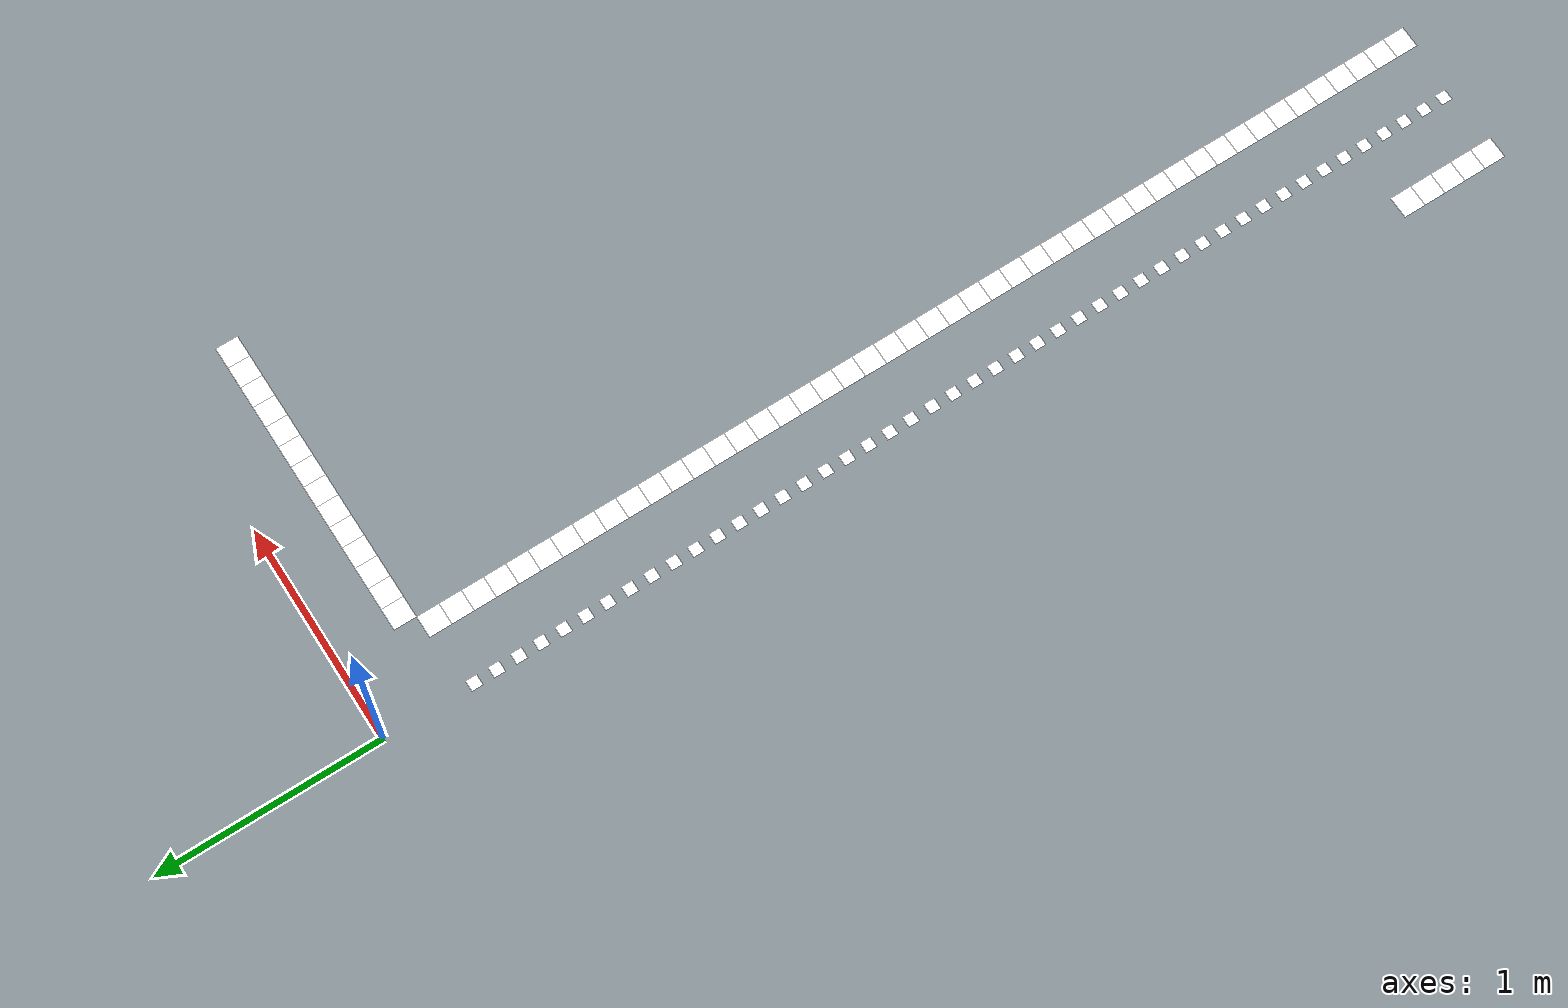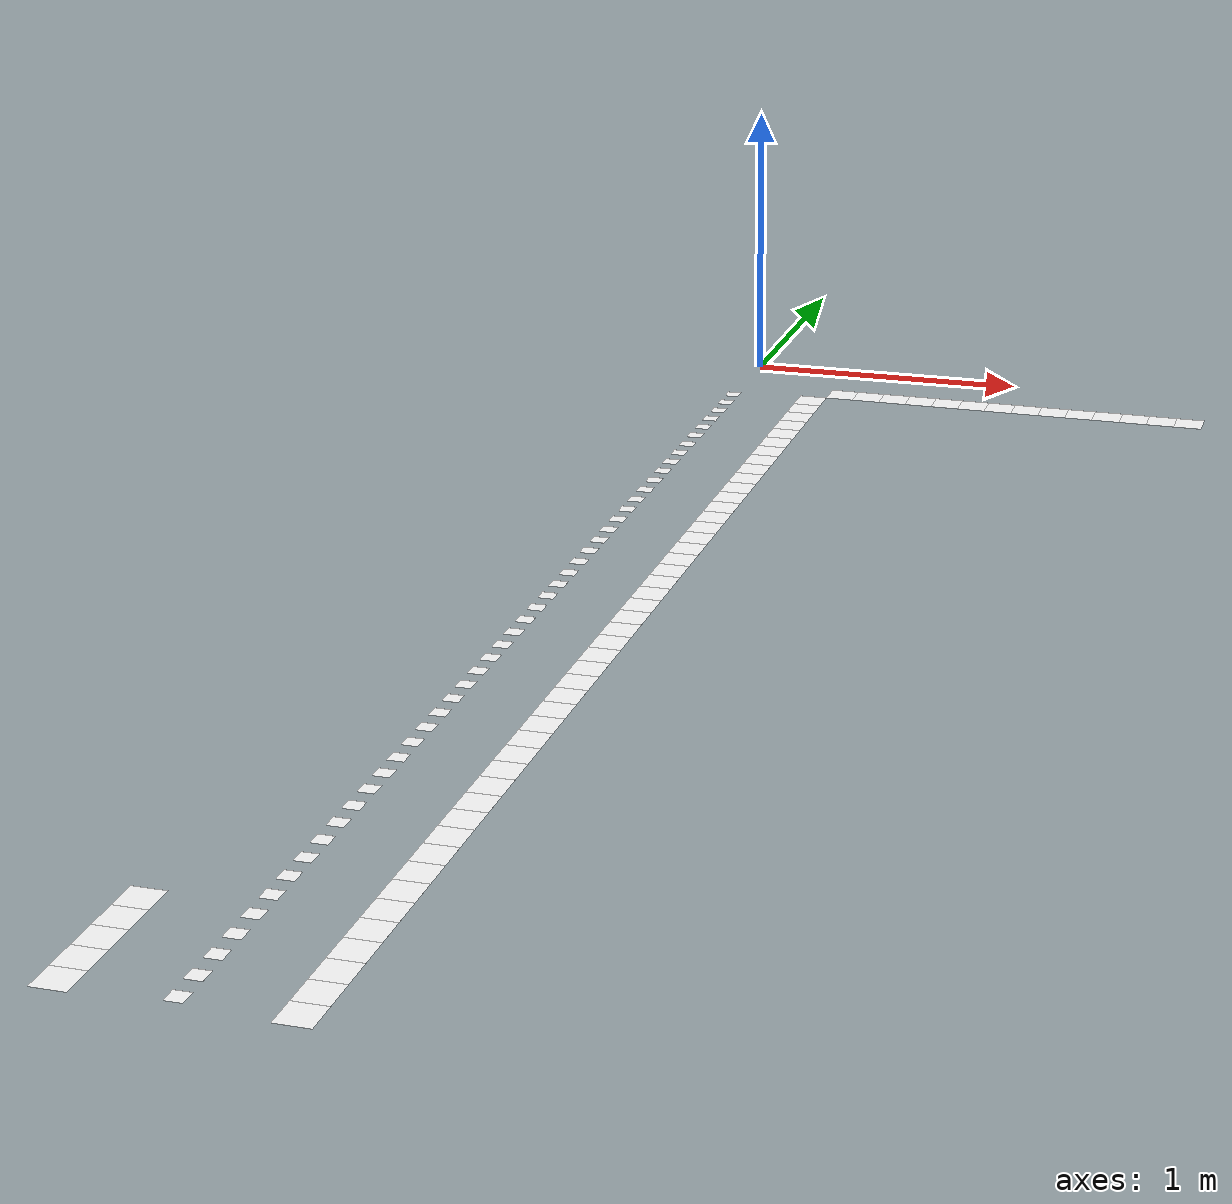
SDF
<sdf version="1.5">
 <model name="AutoNOMOS_mini_intersection">
  <static>true</static>
  <link name="L10_p4">
   <pose>0 -0.4 .011 0 0 0</pose>
   <visual name="visual_L10_p4">
    <cast_shadows>false</cast_shadows>
    <geometry><plane><normal>0 0 1</normal><size>.05 .05</size></plane></geometry>
    <material>
     <ambient>0 0 0 0</ambient>
     <diffuse>1 1 1 0</diffuse>
     <specular>0 0 0 0</specular>
     <emissive>0 0 0 0</emissive>
    </material>
   </visual>
  </link>
  <link name="L11_p4">
   <pose>0.3 -0.4 .011 0 0 0</pose>
   <visual name="visual_L11_p4">
    <cast_shadows>false</cast_shadows>
    <geometry><plane><normal>0 0 1</normal><size>.1 .1</size></plane></geometry>
    <material>
     <ambient>0 0 0 0</ambient>
     <diffuse>1 1 1 0</diffuse>
     <specular>0 0 0 0</specular>
     <emissive>0 0 0 0</emissive>
    </material>
   </visual>
  </link>
  <link name="L12_p4">
   <pose>0.4 -0.3 .011 0 0 0</pose>
   <visual name="visual_L12_p4">
    <cast_shadows>false</cast_shadows>
    <geometry><plane><normal>0 0 1</normal><size>.1 .1</size></plane></geometry>
    <material>
     <ambient>0 0 0 0</ambient>
     <diffuse>1 1 1 0</diffuse>
     <specular>0 0 0 0</specular>
     <emissive>0 0 0 0</emissive>
    </material>
   </visual>
  </link>
  <link name="L10_p5">
   <pose>0 -0.5 .011 0 0 0</pose>
   <visual name="visual_L10_p5">
    <cast_shadows>false</cast_shadows>
    <geometry><plane><normal>0 0 1</normal><size>.05 .05</size></plane></geometry>
    <material>
     <ambient>0 0 0 0</ambient>
     <diffuse>1 1 1 0</diffuse>
     <specular>0 0 0 0</specular>
     <emissive>0 0 0 0</emissive>
    </material>
   </visual>
  </link>
  <link name="L11_p5">
   <pose>0.3 -0.5 .011 0 0 0</pose>
   <visual name="visual_L11_p5">
    <cast_shadows>false</cast_shadows>
    <geometry><plane><normal>0 0 1</normal><size>.1 .1</size></plane></geometry>
    <material>
     <ambient>0 0 0 0</ambient>
     <diffuse>1 1 1 0</diffuse>
     <specular>0 0 0 0</specular>
     <emissive>0 0 0 0</emissive>
    </material>
   </visual>
  </link>
  <link name="L12_p5">
   <pose>0.5 -0.3 .011 0 0 0</pose>
   <visual name="visual_L12_p5">
    <cast_shadows>false</cast_shadows>
    <geometry><plane><normal>0 0 1</normal><size>.1 .1</size></plane></geometry>
    <material>
     <ambient>0 0 0 0</ambient>
     <diffuse>1 1 1 0</diffuse>
     <specular>0 0 0 0</specular>
     <emissive>0 0 0 0</emissive>
    </material>
   </visual>
  </link>
  <link name="L10_p6">
   <pose>0 -0.6 .011 0 0 0</pose>
   <visual name="visual_L10_p6">
    <cast_shadows>false</cast_shadows>
    <geometry><plane><normal>0 0 1</normal><size>.05 .05</size></plane></geometry>
    <material>
     <ambient>0 0 0 0</ambient>
     <diffuse>1 1 1 0</diffuse>
     <specular>0 0 0 0</specular>
     <emissive>0 0 0 0</emissive>
    </material>
   </visual>
  </link>
  <link name="L11_p6">
   <pose>0.3 -0.6 .011 0 0 0</pose>
   <visual name="visual_L11_p6">
    <cast_shadows>false</cast_shadows>
    <geometry><plane><normal>0 0 1</normal><size>.1 .1</size></plane></geometry>
    <material>
     <ambient>0 0 0 0</ambient>
     <diffuse>1 1 1 0</diffuse>
     <specular>0 0 0 0</specular>
     <emissive>0 0 0 0</emissive>
    </material>
   </visual>
  </link>
  <link name="L12_p6">
   <pose>0.6 -0.3 .011 0 0 0</pose>
   <visual name="visual_L12_p6">
    <cast_shadows>false</cast_shadows>
    <geometry><plane><normal>0 0 1</normal><size>.1 .1</size></plane></geometry>
    <material>
     <ambient>0 0 0 0</ambient>
     <diffuse>1 1 1 0</diffuse>
     <specular>0 0 0 0</specular>
     <emissive>0 0 0 0</emissive>
    </material>
   </visual>
  </link>
  <link name="L10_p7">
   <pose>0 -0.7 .011 0 0 0</pose>
   <visual name="visual_L10_p7">
    <cast_shadows>false</cast_shadows>
    <geometry><plane><normal>0 0 1</normal><size>.05 .05</size></plane></geometry>
    <material>
     <ambient>0 0 0 0</ambient>
     <diffuse>1 1 1 0</diffuse>
     <specular>0 0 0 0</specular>
     <emissive>0 0 0 0</emissive>
    </material>
   </visual>
  </link>
  <link name="L11_p7">
   <pose>0.3 -0.7 .011 0 0 0</pose>
   <visual name="visual_L11_p7">
    <cast_shadows>false</cast_shadows>
    <geometry><plane><normal>0 0 1</normal><size>.1 .1</size></plane></geometry>
    <material>
     <ambient>0 0 0 0</ambient>
     <diffuse>1 1 1 0</diffuse>
     <specular>0 0 0 0</specular>
     <emissive>0 0 0 0</emissive>
    </material>
   </visual>
  </link>
  <link name="L12_p7">
   <pose>0.7 -0.3 .011 0 0 0</pose>
   <visual name="visual_L12_p7">
    <cast_shadows>false</cast_shadows>
    <geometry><plane><normal>0 0 1</normal><size>.1 .1</size></plane></geometry>
    <material>
     <ambient>0 0 0 0</ambient>
     <diffuse>1 1 1 0</diffuse>
     <specular>0 0 0 0</specular>
     <emissive>0 0 0 0</emissive>
    </material>
   </visual>
  </link>
  <link name="L10_p8">
   <pose>0 -0.8 .011 0 0 0</pose>
   <visual name="visual_L10_p8">
    <cast_shadows>false</cast_shadows>
    <geometry><plane><normal>0 0 1</normal><size>.05 .05</size></plane></geometry>
    <material>
     <ambient>0 0 0 0</ambient>
     <diffuse>1 1 1 0</diffuse>
     <specular>0 0 0 0</specular>
     <emissive>0 0 0 0</emissive>
    </material>
   </visual>
  </link>
  <link name="L11_p8">
   <pose>0.3 -0.8 .011 0 0 0</pose>
   <visual name="visual_L11_p8">
    <cast_shadows>false</cast_shadows>
    <geometry><plane><normal>0 0 1</normal><size>.1 .1</size></plane></geometry>
    <material>
     <ambient>0 0 0 0</ambient>
     <diffuse>1 1 1 0</diffuse>
     <specular>0 0 0 0</specular>
     <emissive>0 0 0 0</emissive>
    </material>
   </visual>
  </link>
  <link name="L12_p8">
   <pose>0.8 -0.3 .011 0 0 0</pose>
   <visual name="visual_L12_p8">
    <cast_shadows>false</cast_shadows>
    <geometry><plane><normal>0 0 1</normal><size>.1 .1</size></plane></geometry>
    <material>
     <ambient>0 0 0 0</ambient>
     <diffuse>1 1 1 0</diffuse>
     <specular>0 0 0 0</specular>
     <emissive>0 0 0 0</emissive>
    </material>
   </visual>
  </link>
  <link name="L10_p9">
   <pose>0 -0.9 .011 0 0 0</pose>
   <visual name="visual_L10_p9">
    <cast_shadows>false</cast_shadows>
    <geometry><plane><normal>0 0 1</normal><size>.05 .05</size></plane></geometry>
    <material>
     <ambient>0 0 0 0</ambient>
     <diffuse>1 1 1 0</diffuse>
     <specular>0 0 0 0</specular>
     <emissive>0 0 0 0</emissive>
    </material>
   </visual>
  </link>
  <link name="L11_p9">
   <pose>0.3 -0.9 .011 0 0 0</pose>
   <visual name="visual_L11_p9">
    <cast_shadows>false</cast_shadows>
    <geometry><plane><normal>0 0 1</normal><size>.1 .1</size></plane></geometry>
    <material>
     <ambient>0 0 0 0</ambient>
     <diffuse>1 1 1 0</diffuse>
     <specular>0 0 0 0</specular>
     <emissive>0 0 0 0</emissive>
    </material>
   </visual>
  </link>
  <link name="L12_p9">
   <pose>0.9 -0.3 .011 0 0 0</pose>
   <visual name="visual_L12_p9">
    <cast_shadows>false</cast_shadows>
    <geometry><plane><normal>0 0 1</normal><size>.1 .1</size></plane></geometry>
    <material>
     <ambient>0 0 0 0</ambient>
     <diffuse>1 1 1 0</diffuse>
     <specular>0 0 0 0</specular>
     <emissive>0 0 0 0</emissive>
    </material>
   </visual>
  </link>
  <link name="L10_p10">
   <pose>0 -1 .011 0 0 0</pose>
   <visual name="visual_L10_p10">
    <cast_shadows>false</cast_shadows>
    <geometry><plane><normal>0 0 1</normal><size>.05 .05</size></plane></geometry>
    <material>
     <ambient>0 0 0 0</ambient>
     <diffuse>1 1 1 0</diffuse>
     <specular>0 0 0 0</specular>
     <emissive>0 0 0 0</emissive>
    </material>
   </visual>
  </link>
  <link name="L11_p10">
   <pose>0.3 -1 .011 0 0 0</pose>
   <visual name="visual_L11_p10">
    <cast_shadows>false</cast_shadows>
    <geometry><plane><normal>0 0 1</normal><size>.1 .1</size></plane></geometry>
    <material>
     <ambient>0 0 0 0</ambient>
     <diffuse>1 1 1 0</diffuse>
     <specular>0 0 0 0</specular>
     <emissive>0 0 0 0</emissive>
    </material>
   </visual>
  </link>
  <link name="L12_p10">
   <pose>1 -0.3 .011 0 0 0</pose>
   <visual name="visual_L12_p10">
    <cast_shadows>false</cast_shadows>
    <geometry><plane><normal>0 0 1</normal><size>.1 .1</size></plane></geometry>
    <material>
     <ambient>0 0 0 0</ambient>
     <diffuse>1 1 1 0</diffuse>
     <specular>0 0 0 0</specular>
     <emissive>0 0 0 0</emissive>
    </material>
   </visual>
  </link>
  <link name="L10_p11">
   <pose>0 -1.1 .011 0 0 0</pose>
   <visual name="visual_L10_p11">
    <cast_shadows>false</cast_shadows>
    <geometry><plane><normal>0 0 1</normal><size>.05 .05</size></plane></geometry>
    <material>
     <ambient>0 0 0 0</ambient>
     <diffuse>1 1 1 0</diffuse>
     <specular>0 0 0 0</specular>
     <emissive>0 0 0 0</emissive>
    </material>
   </visual>
  </link>
  <link name="L11_p11">
   <pose>0.3 -1.1 .011 0 0 0</pose>
   <visual name="visual_L11_p11">
    <cast_shadows>false</cast_shadows>
    <geometry><plane><normal>0 0 1</normal><size>.1 .1</size></plane></geometry>
    <material>
     <ambient>0 0 0 0</ambient>
     <diffuse>1 1 1 0</diffuse>
     <specular>0 0 0 0</specular>
     <emissive>0 0 0 0</emissive>
    </material>
   </visual>
  </link>
  <link name="L12_p11">
   <pose>1.1 -0.3 .011 0 0 0</pose>
   <visual name="visual_L12_p11">
    <cast_shadows>false</cast_shadows>
    <geometry><plane><normal>0 0 1</normal><size>.1 .1</size></plane></geometry>
    <material>
     <ambient>0 0 0 0</ambient>
     <diffuse>1 1 1 0</diffuse>
     <specular>0 0 0 0</specular>
     <emissive>0 0 0 0</emissive>
    </material>
   </visual>
  </link>
  <link name="L10_p12">
   <pose>0 -1.2 .011 0 0 0</pose>
   <visual name="visual_L10_p12">
    <cast_shadows>false</cast_shadows>
    <geometry><plane><normal>0 0 1</normal><size>.05 .05</size></plane></geometry>
    <material>
     <ambient>0 0 0 0</ambient>
     <diffuse>1 1 1 0</diffuse>
     <specular>0 0 0 0</specular>
     <emissive>0 0 0 0</emissive>
    </material>
   </visual>
  </link>
  <link name="L11_p12">
   <pose>0.3 -1.2 .011 0 0 0</pose>
   <visual name="visual_L11_p12">
    <cast_shadows>false</cast_shadows>
    <geometry><plane><normal>0 0 1</normal><size>.1 .1</size></plane></geometry>
    <material>
     <ambient>0 0 0 0</ambient>
     <diffuse>1 1 1 0</diffuse>
     <specular>0 0 0 0</specular>
     <emissive>0 0 0 0</emissive>
    </material>
   </visual>
  </link>
  <link name="L12_p12">
   <pose>1.2 -0.3 .011 0 0 0</pose>
   <visual name="visual_L12_p12">
    <cast_shadows>false</cast_shadows>
    <geometry><plane><normal>0 0 1</normal><size>.1 .1</size></plane></geometry>
    <material>
     <ambient>0 0 0 0</ambient>
     <diffuse>1 1 1 0</diffuse>
     <specular>0 0 0 0</specular>
     <emissive>0 0 0 0</emissive>
    </material>
   </visual>
  </link>
  <link name="L10_p13">
   <pose>0 -1.3 .011 0 0 0</pose>
   <visual name="visual_L10_p13">
    <cast_shadows>false</cast_shadows>
    <geometry><plane><normal>0 0 1</normal><size>.05 .05</size></plane></geometry>
    <material>
     <ambient>0 0 0 0</ambient>
     <diffuse>1 1 1 0</diffuse>
     <specular>0 0 0 0</specular>
     <emissive>0 0 0 0</emissive>
    </material>
   </visual>
  </link>
  <link name="L11_p13">
   <pose>0.3 -1.3 .011 0 0 0</pose>
   <visual name="visual_L11_p13">
    <cast_shadows>false</cast_shadows>
    <geometry><plane><normal>0 0 1</normal><size>.1 .1</size></plane></geometry>
    <material>
     <ambient>0 0 0 0</ambient>
     <diffuse>1 1 1 0</diffuse>
     <specular>0 0 0 0</specular>
     <emissive>0 0 0 0</emissive>
    </material>
   </visual>
  </link>
  <link name="L12_p13">
   <pose>1.3 -0.3 .011 0 0 0</pose>
   <visual name="visual_L12_p13">
    <cast_shadows>false</cast_shadows>
    <geometry><plane><normal>0 0 1</normal><size>.1 .1</size></plane></geometry>
    <material>
     <ambient>0 0 0 0</ambient>
     <diffuse>1 1 1 0</diffuse>
     <specular>0 0 0 0</specular>
     <emissive>0 0 0 0</emissive>
    </material>
   </visual>
  </link>
  <link name="L10_p14">
   <pose>0 -1.4 .011 0 0 0</pose>
   <visual name="visual_L10_p14">
    <cast_shadows>false</cast_shadows>
    <geometry><plane><normal>0 0 1</normal><size>.05 .05</size></plane></geometry>
    <material>
     <ambient>0 0 0 0</ambient>
     <diffuse>1 1 1 0</diffuse>
     <specular>0 0 0 0</specular>
     <emissive>0 0 0 0</emissive>
    </material>
   </visual>
  </link>
  <link name="L11_p14">
   <pose>0.3 -1.4 .011 0 0 0</pose>
   <visual name="visual_L11_p14">
    <cast_shadows>false</cast_shadows>
    <geometry><plane><normal>0 0 1</normal><size>.1 .1</size></plane></geometry>
    <material>
     <ambient>0 0 0 0</ambient>
     <diffuse>1 1 1 0</diffuse>
     <specular>0 0 0 0</specular>
     <emissive>0 0 0 0</emissive>
    </material>
   </visual>
  </link>
  <link name="L12_p14">
   <pose>1.4 -0.3 .011 0 0 0</pose>
   <visual name="visual_L12_p14">
    <cast_shadows>false</cast_shadows>
    <geometry><plane><normal>0 0 1</normal><size>.1 .1</size></plane></geometry>
    <material>
     <ambient>0 0 0 0</ambient>
     <diffuse>1 1 1 0</diffuse>
     <specular>0 0 0 0</specular>
     <emissive>0 0 0 0</emissive>
    </material>
   </visual>
  </link>
  <link name="L10_p15">
   <pose>0 -1.5 .011 0 0 0</pose>
   <visual name="visual_L10_p15">
    <cast_shadows>false</cast_shadows>
    <geometry><plane><normal>0 0 1</normal><size>.05 .05</size></plane></geometry>
    <material>
     <ambient>0 0 0 0</ambient>
     <diffuse>1 1 1 0</diffuse>
     <specular>0 0 0 0</specular>
     <emissive>0 0 0 0</emissive>
    </material>
   </visual>
  </link>
  <link name="L11_p15">
   <pose>0.3 -1.5 .011 0 0 0</pose>
   <visual name="visual_L11_p15">
    <cast_shadows>false</cast_shadows>
    <geometry><plane><normal>0 0 1</normal><size>.1 .1</size></plane></geometry>
    <material>
     <ambient>0 0 0 0</ambient>
     <diffuse>1 1 1 0</diffuse>
     <specular>0 0 0 0</specular>
     <emissive>0 0 0 0</emissive>
    </material>
   </visual>
  </link>
  <link name="L12_p15">
   <pose>1.5 -0.3 .011 0 0 0</pose>
   <visual name="visual_L12_p15">
    <cast_shadows>false</cast_shadows>
    <geometry><plane><normal>0 0 1</normal><size>.1 .1</size></plane></geometry>
    <material>
     <ambient>0 0 0 0</ambient>
     <diffuse>1 1 1 0</diffuse>
     <specular>0 0 0 0</specular>
     <emissive>0 0 0 0</emissive>
    </material>
   </visual>
  </link>
  <link name="L10_p16">
   <pose>0 -1.6 .011 0 0 0</pose>
   <visual name="visual_L10_p16">
    <cast_shadows>false</cast_shadows>
    <geometry><plane><normal>0 0 1</normal><size>.05 .05</size></plane></geometry>
    <material>
     <ambient>0 0 0 0</ambient>
     <diffuse>1 1 1 0</diffuse>
     <specular>0 0 0 0</specular>
     <emissive>0 0 0 0</emissive>
    </material>
   </visual>
  </link>
  <link name="L11_p16">
   <pose>0.3 -1.6 .011 0 0 0</pose>
   <visual name="visual_L11_p16">
    <cast_shadows>false</cast_shadows>
    <geometry><plane><normal>0 0 1</normal><size>.1 .1</size></plane></geometry>
    <material>
     <ambient>0 0 0 0</ambient>
     <diffuse>1 1 1 0</diffuse>
     <specular>0 0 0 0</specular>
     <emissive>0 0 0 0</emissive>
    </material>
   </visual>
  </link>
  <link name="L12_p16">
   <pose>1.6 -0.3 .011 0 0 0</pose>
   <visual name="visual_L12_p16">
    <cast_shadows>false</cast_shadows>
    <geometry><plane><normal>0 0 1</normal><size>.1 .1</size></plane></geometry>
    <material>
     <ambient>0 0 0 0</ambient>
     <diffuse>1 1 1 0</diffuse>
     <specular>0 0 0 0</specular>
     <emissive>0 0 0 0</emissive>
    </material>
   </visual>
  </link>
  <link name="L10_p17">
   <pose>0 -1.7 .011 0 0 0</pose>
   <visual name="visual_L10_p17">
    <cast_shadows>false</cast_shadows>
    <geometry><plane><normal>0 0 1</normal><size>.05 .05</size></plane></geometry>
    <material>
     <ambient>0 0 0 0</ambient>
     <diffuse>1 1 1 0</diffuse>
     <specular>0 0 0 0</specular>
     <emissive>0 0 0 0</emissive>
    </material>
   </visual>
  </link>
  <link name="L11_p17">
   <pose>0.3 -1.7 .011 0 0 0</pose>
   <visual name="visual_L11_p17">
    <cast_shadows>false</cast_shadows>
    <geometry><plane><normal>0 0 1</normal><size>.1 .1</size></plane></geometry>
    <material>
     <ambient>0 0 0 0</ambient>
     <diffuse>1 1 1 0</diffuse>
     <specular>0 0 0 0</specular>
     <emissive>0 0 0 0</emissive>
    </material>
   </visual>
  </link>
  <link name="L12_p17">
   <pose>1.7 -0.3 .011 0 0 0</pose>
   <visual name="visual_L12_p17">
    <cast_shadows>false</cast_shadows>
    <geometry><plane><normal>0 0 1</normal><size>.1 .1</size></plane></geometry>
    <material>
     <ambient>0 0 0 0</ambient>
     <diffuse>1 1 1 0</diffuse>
     <specular>0 0 0 0</specular>
     <emissive>0 0 0 0</emissive>
    </material>
   </visual>
  </link>
  <link name="L10_p18">
   <pose>0 -1.8 .011 0 0 0</pose>
   <visual name="visual_L10_p18">
    <cast_shadows>false</cast_shadows>
    <geometry><plane><normal>0 0 1</normal><size>.05 .05</size></plane></geometry>
    <material>
     <ambient>0 0 0 0</ambient>
     <diffuse>1 1 1 0</diffuse>
     <specular>0 0 0 0</specular>
     <emissive>0 0 0 0</emissive>
    </material>
   </visual>
  </link>
  <link name="L11_p18">
   <pose>0.3 -1.8 .011 0 0 0</pose>
   <visual name="visual_L11_p18">
    <cast_shadows>false</cast_shadows>
    <geometry><plane><normal>0 0 1</normal><size>.1 .1</size></plane></geometry>
    <material>
     <ambient>0 0 0 0</ambient>
     <diffuse>1 1 1 0</diffuse>
     <specular>0 0 0 0</specular>
     <emissive>0 0 0 0</emissive>
    </material>
   </visual>
  </link>
  <link name="L10_p19">
   <pose>0 -1.9 .011 0 0 0</pose>
   <visual name="visual_L10_p19">
    <cast_shadows>false</cast_shadows>
    <geometry><plane><normal>0 0 1</normal><size>.05 .05</size></plane></geometry>
    <material>
     <ambient>0 0 0 0</ambient>
     <diffuse>1 1 1 0</diffuse>
     <specular>0 0 0 0</specular>
     <emissive>0 0 0 0</emissive>
    </material>
   </visual>
  </link>
  <link name="L11_p19">
   <pose>0.3 -1.9 .011 0 0 0</pose>
   <visual name="visual_L11_p19">
    <cast_shadows>false</cast_shadows>
    <geometry><plane><normal>0 0 1</normal><size>.1 .1</size></plane></geometry>
    <material>
     <ambient>0 0 0 0</ambient>
     <diffuse>1 1 1 0</diffuse>
     <specular>0 0 0 0</specular>
     <emissive>0 0 0 0</emissive>
    </material>
   </visual>
  </link>
  <link name="L10_p20">
   <pose>0 -2 .011 0 0 0</pose>
   <visual name="visual_L10_p20">
    <cast_shadows>false</cast_shadows>
    <geometry><plane><normal>0 0 1</normal><size>.05 .05</size></plane></geometry>
    <material>
     <ambient>0 0 0 0</ambient>
     <diffuse>1 1 1 0</diffuse>
     <specular>0 0 0 0</specular>
     <emissive>0 0 0 0</emissive>
    </material>
   </visual>
  </link>
  <link name="L11_p20">
   <pose>0.3 -2 .011 0 0 0</pose>
   <visual name="visual_L11_p20">
    <cast_shadows>false</cast_shadows>
    <geometry><plane><normal>0 0 1</normal><size>.1 .1</size></plane></geometry>
    <material>
     <ambient>0 0 0 0</ambient>
     <diffuse>1 1 1 0</diffuse>
     <specular>0 0 0 0</specular>
     <emissive>0 0 0 0</emissive>
    </material>
   </visual>
  </link>
  <link name="L10_p21">
   <pose>0 -2.1 .011 0 0 0</pose>
   <visual name="visual_L10_p21">
    <cast_shadows>false</cast_shadows>
    <geometry><plane><normal>0 0 1</normal><size>.05 .05</size></plane></geometry>
    <material>
     <ambient>0 0 0 0</ambient>
     <diffuse>1 1 1 0</diffuse>
     <specular>0 0 0 0</specular>
     <emissive>0 0 0 0</emissive>
    </material>
   </visual>
  </link>
  <link name="L11_p21">
   <pose>0.3 -2.1 .011 0 0 0</pose>
   <visual name="visual_L11_p21">
    <cast_shadows>false</cast_shadows>
    <geometry><plane><normal>0 0 1</normal><size>.1 .1</size></plane></geometry>
    <material>
     <ambient>0 0 0 0</ambient>
     <diffuse>1 1 1 0</diffuse>
     <specular>0 0 0 0</specular>
     <emissive>0 0 0 0</emissive>
    </material>
   </visual>
  </link>
  <link name="L10_p22">
   <pose>0 -2.2 .011 0 0 0</pose>
   <visual name="visual_L10_p22">
    <cast_shadows>false</cast_shadows>
    <geometry><plane><normal>0 0 1</normal><size>.05 .05</size></plane></geometry>
    <material>
     <ambient>0 0 0 0</ambient>
     <diffuse>1 1 1 0</diffuse>
     <specular>0 0 0 0</specular>
     <emissive>0 0 0 0</emissive>
    </material>
   </visual>
  </link>
  <link name="L11_p22">
   <pose>0.3 -2.2 .011 0 0 0</pose>
   <visual name="visual_L11_p22">
    <cast_shadows>false</cast_shadows>
    <geometry><plane><normal>0 0 1</normal><size>.1 .1</size></plane></geometry>
    <material>
     <ambient>0 0 0 0</ambient>
     <diffuse>1 1 1 0</diffuse>
     <specular>0 0 0 0</specular>
     <emissive>0 0 0 0</emissive>
    </material>
   </visual>
  </link>
  <link name="L10_p23">
   <pose>0 -2.3 .011 0 0 0</pose>
   <visual name="visual_L10_p23">
    <cast_shadows>false</cast_shadows>
    <geometry><plane><normal>0 0 1</normal><size>.05 .05</size></plane></geometry>
    <material>
     <ambient>0 0 0 0</ambient>
     <diffuse>1 1 1 0</diffuse>
     <specular>0 0 0 0</specular>
     <emissive>0 0 0 0</emissive>
    </material>
   </visual>
  </link>
  <link name="L11_p23">
   <pose>0.3 -2.3 .011 0 0 0</pose>
   <visual name="visual_L11_p23">
    <cast_shadows>false</cast_shadows>
    <geometry><plane><normal>0 0 1</normal><size>.1 .1</size></plane></geometry>
    <material>
     <ambient>0 0 0 0</ambient>
     <diffuse>1 1 1 0</diffuse>
     <specular>0 0 0 0</specular>
     <emissive>0 0 0 0</emissive>
    </material>
   </visual>
  </link>
  <link name="L10_p24">
   <pose>0 -2.4 .011 0 0 0</pose>
   <visual name="visual_L10_p24">
    <cast_shadows>false</cast_shadows>
    <geometry><plane><normal>0 0 1</normal><size>.05 .05</size></plane></geometry>
    <material>
     <ambient>0 0 0 0</ambient>
     <diffuse>1 1 1 0</diffuse>
     <specular>0 0 0 0</specular>
     <emissive>0 0 0 0</emissive>
    </material>
   </visual>
  </link>
  <link name="L11_p24">
   <pose>0.3 -2.4 .011 0 0 0</pose>
   <visual name="visual_L11_p24">
    <cast_shadows>false</cast_shadows>
    <geometry><plane><normal>0 0 1</normal><size>.1 .1</size></plane></geometry>
    <material>
     <ambient>0 0 0 0</ambient>
     <diffuse>1 1 1 0</diffuse>
     <specular>0 0 0 0</specular>
     <emissive>0 0 0 0</emissive>
    </material>
   </visual>
  </link>
  <link name="L10_p25">
   <pose>0 -2.5 .011 0 0 0</pose>
   <visual name="visual_L10_p25">
    <cast_shadows>false</cast_shadows>
    <geometry><plane><normal>0 0 1</normal><size>.05 .05</size></plane></geometry>
    <material>
     <ambient>0 0 0 0</ambient>
     <diffuse>1 1 1 0</diffuse>
     <specular>0 0 0 0</specular>
     <emissive>0 0 0 0</emissive>
    </material>
   </visual>
  </link>
  <link name="L11_p25">
   <pose>0.3 -2.5 .011 0 0 0</pose>
   <visual name="visual_L11_p25">
    <cast_shadows>false</cast_shadows>
    <geometry><plane><normal>0 0 1</normal><size>.1 .1</size></plane></geometry>
    <material>
     <ambient>0 0 0 0</ambient>
     <diffuse>1 1 1 0</diffuse>
     <specular>0 0 0 0</specular>
     <emissive>0 0 0 0</emissive>
    </material>
   </visual>
  </link>
  <link name="L10_p26">
   <pose>0 -2.6 .011 0 0 0</pose>
   <visual name="visual_L10_p26">
    <cast_shadows>false</cast_shadows>
    <geometry><plane><normal>0 0 1</normal><size>.05 .05</size></plane></geometry>
    <material>
     <ambient>0 0 0 0</ambient>
     <diffuse>1 1 1 0</diffuse>
     <specular>0 0 0 0</specular>
     <emissive>0 0 0 0</emissive>
    </material>
   </visual>
  </link>
  <link name="L11_p26">
   <pose>0.3 -2.6 .011 0 0 0</pose>
   <visual name="visual_L11_p26">
    <cast_shadows>false</cast_shadows>
    <geometry><plane><normal>0 0 1</normal><size>.1 .1</size></plane></geometry>
    <material>
     <ambient>0 0 0 0</ambient>
     <diffuse>1 1 1 0</diffuse>
     <specular>0 0 0 0</specular>
     <emissive>0 0 0 0</emissive>
    </material>
   </visual>
  </link>
  <link name="L10_p27">
   <pose>0 -2.7 .011 0 0 0</pose>
   <visual name="visual_L10_p27">
    <cast_shadows>false</cast_shadows>
    <geometry><plane><normal>0 0 1</normal><size>.05 .05</size></plane></geometry>
    <material>
     <ambient>0 0 0 0</ambient>
     <diffuse>1 1 1 0</diffuse>
     <specular>0 0 0 0</specular>
     <emissive>0 0 0 0</emissive>
    </material>
   </visual>
  </link>
  <link name="L11_p27">
   <pose>0.3 -2.7 .011 0 0 0</pose>
   <visual name="visual_L11_p27">
    <cast_shadows>false</cast_shadows>
    <geometry><plane><normal>0 0 1</normal><size>.1 .1</size></plane></geometry>
    <material>
     <ambient>0 0 0 0</ambient>
     <diffuse>1 1 1 0</diffuse>
     <specular>0 0 0 0</specular>
     <emissive>0 0 0 0</emissive>
    </material>
   </visual>
  </link>
  <link name="L10_p28">
   <pose>0 -2.8 .011 0 0 0</pose>
   <visual name="visual_L10_p28">
    <cast_shadows>false</cast_shadows>
    <geometry><plane><normal>0 0 1</normal><size>.05 .05</size></plane></geometry>
    <material>
     <ambient>0 0 0 0</ambient>
     <diffuse>1 1 1 0</diffuse>
     <specular>0 0 0 0</specular>
     <emissive>0 0 0 0</emissive>
    </material>
   </visual>
  </link>
  <link name="L11_p28">
   <pose>0.3 -2.8 .011 0 0 0</pose>
   <visual name="visual_L11_p28">
    <cast_shadows>false</cast_shadows>
    <geometry><plane><normal>0 0 1</normal><size>.1 .1</size></plane></geometry>
    <material>
     <ambient>0 0 0 0</ambient>
     <diffuse>1 1 1 0</diffuse>
     <specular>0 0 0 0</specular>
     <emissive>0 0 0 0</emissive>
    </material>
   </visual>
  </link>
  <link name="L10_p29">
   <pose>0 -2.9 .011 0 0 0</pose>
   <visual name="visual_L10_p29">
    <cast_shadows>false</cast_shadows>
    <geometry><plane><normal>0 0 1</normal><size>.05 .05</size></plane></geometry>
    <material>
     <ambient>0 0 0 0</ambient>
     <diffuse>1 1 1 0</diffuse>
     <specular>0 0 0 0</specular>
     <emissive>0 0 0 0</emissive>
    </material>
   </visual>
  </link>
  <link name="L11_p29">
   <pose>0.3 -2.9 .011 0 0 0</pose>
   <visual name="visual_L11_p29">
    <cast_shadows>false</cast_shadows>
    <geometry><plane><normal>0 0 1</normal><size>.1 .1</size></plane></geometry>
    <material>
     <ambient>0 0 0 0</ambient>
     <diffuse>1 1 1 0</diffuse>
     <specular>0 0 0 0</specular>
     <emissive>0 0 0 0</emissive>
    </material>
   </visual>
  </link>
  <link name="L10_p30">
   <pose>0 -3 .011 0 0 0</pose>
   <visual name="visual_L10_p30">
    <cast_shadows>false</cast_shadows>
    <geometry><plane><normal>0 0 1</normal><size>.05 .05</size></plane></geometry>
    <material>
     <ambient>0 0 0 0</ambient>
     <diffuse>1 1 1 0</diffuse>
     <specular>0 0 0 0</specular>
     <emissive>0 0 0 0</emissive>
    </material>
   </visual>
  </link>
  <link name="L11_p30">
   <pose>0.3 -3 .011 0 0 0</pose>
   <visual name="visual_L11_p30">
    <cast_shadows>false</cast_shadows>
    <geometry><plane><normal>0 0 1</normal><size>.1 .1</size></plane></geometry>
    <material>
     <ambient>0 0 0 0</ambient>
     <diffuse>1 1 1 0</diffuse>
     <specular>0 0 0 0</specular>
     <emissive>0 0 0 0</emissive>
    </material>
   </visual>
  </link>
  <link name="L10_p31">
   <pose>0 -3.1 .011 0 0 0</pose>
   <visual name="visual_L10_p31">
    <cast_shadows>false</cast_shadows>
    <geometry><plane><normal>0 0 1</normal><size>.05 .05</size></plane></geometry>
    <material>
     <ambient>0 0 0 0</ambient>
     <diffuse>1 1 1 0</diffuse>
     <specular>0 0 0 0</specular>
     <emissive>0 0 0 0</emissive>
    </material>
   </visual>
  </link>
  <link name="L11_p31">
   <pose>0.3 -3.1 .011 0 0 0</pose>
   <visual name="visual_L11_p31">
    <cast_shadows>false</cast_shadows>
    <geometry><plane><normal>0 0 1</normal><size>.1 .1</size></plane></geometry>
    <material>
     <ambient>0 0 0 0</ambient>
     <diffuse>1 1 1 0</diffuse>
     <specular>0 0 0 0</specular>
     <emissive>0 0 0 0</emissive>
    </material>
   </visual>
  </link>
  <link name="L10_p32">
   <pose>0 -3.2 .011 0 0 0</pose>
   <visual name="visual_L10_p32">
    <cast_shadows>false</cast_shadows>
    <geometry><plane><normal>0 0 1</normal><size>.05 .05</size></plane></geometry>
    <material>
     <ambient>0 0 0 0</ambient>
     <diffuse>1 1 1 0</diffuse>
     <specular>0 0 0 0</specular>
     <emissive>0 0 0 0</emissive>
    </material>
   </visual>
  </link>
  <link name="L11_p32">
   <pose>0.3 -3.2 .011 0 0 0</pose>
   <visual name="visual_L11_p32">
    <cast_shadows>false</cast_shadows>
    <geometry><plane><normal>0 0 1</normal><size>.1 .1</size></plane></geometry>
    <material>
     <ambient>0 0 0 0</ambient>
     <diffuse>1 1 1 0</diffuse>
     <specular>0 0 0 0</specular>
     <emissive>0 0 0 0</emissive>
    </material>
   </visual>
  </link>
  <link name="L10_p33">
   <pose>0 -3.3 .011 0 0 0</pose>
   <visual name="visual_L10_p33">
    <cast_shadows>false</cast_shadows>
    <geometry><plane><normal>0 0 1</normal><size>.05 .05</size></plane></geometry>
    <material>
     <ambient>0 0 0 0</ambient>
     <diffuse>1 1 1 0</diffuse>
     <specular>0 0 0 0</specular>
     <emissive>0 0 0 0</emissive>
    </material>
   </visual>
  </link>
  <link name="L11_p33">
   <pose>0.3 -3.3 .011 0 0 0</pose>
   <visual name="visual_L11_p33">
    <cast_shadows>false</cast_shadows>
    <geometry><plane><normal>0 0 1</normal><size>.1 .1</size></plane></geometry>
    <material>
     <ambient>0 0 0 0</ambient>
     <diffuse>1 1 1 0</diffuse>
     <specular>0 0 0 0</specular>
     <emissive>0 0 0 0</emissive>
    </material>
   </visual>
  </link>
  <link name="L10_p34">
   <pose>0 -3.4 .011 0 0 0</pose>
   <visual name="visual_L10_p34">
    <cast_shadows>false</cast_shadows>
    <geometry><plane><normal>0 0 1</normal><size>.05 .05</size></plane></geometry>
    <material>
     <ambient>0 0 0 0</ambient>
     <diffuse>1 1 1 0</diffuse>
     <specular>0 0 0 0</specular>
     <emissive>0 0 0 0</emissive>
    </material>
   </visual>
  </link>
  <link name="L11_p34">
   <pose>0.3 -3.4 .011 0 0 0</pose>
   <visual name="visual_L11_p34">
    <cast_shadows>false</cast_shadows>
    <geometry><plane><normal>0 0 1</normal><size>.1 .1</size></plane></geometry>
    <material>
     <ambient>0 0 0 0</ambient>
     <diffuse>1 1 1 0</diffuse>
     <specular>0 0 0 0</specular>
     <emissive>0 0 0 0</emissive>
    </material>
   </visual>
  </link>
  <link name="L10_p35">
   <pose>0 -3.5 .011 0 0 0</pose>
   <visual name="visual_L10_p35">
    <cast_shadows>false</cast_shadows>
    <geometry><plane><normal>0 0 1</normal><size>.05 .05</size></plane></geometry>
    <material>
     <ambient>0 0 0 0</ambient>
     <diffuse>1 1 1 0</diffuse>
     <specular>0 0 0 0</specular>
     <emissive>0 0 0 0</emissive>
    </material>
   </visual>
  </link>
  <link name="L11_p35">
   <pose>0.3 -3.5 .011 0 0 0</pose>
   <visual name="visual_L11_p35">
    <cast_shadows>false</cast_shadows>
    <geometry><plane><normal>0 0 1</normal><size>.1 .1</size></plane></geometry>
    <material>
     <ambient>0 0 0 0</ambient>
     <diffuse>1 1 1 0</diffuse>
     <specular>0 0 0 0</specular>
     <emissive>0 0 0 0</emissive>
    </material>
   </visual>
  </link>
  <link name="L10_p36">
   <pose>0 -3.6 .011 0 0 0</pose>
   <visual name="visual_L10_p36">
    <cast_shadows>false</cast_shadows>
    <geometry><plane><normal>0 0 1</normal><size>.05 .05</size></plane></geometry>
    <material>
     <ambient>0 0 0 0</ambient>
     <diffuse>1 1 1 0</diffuse>
     <specular>0 0 0 0</specular>
     <emissive>0 0 0 0</emissive>
    </material>
   </visual>
  </link>
  <link name="L11_p36">
   <pose>0.3 -3.6 .011 0 0 0</pose>
   <visual name="visual_L11_p36">
    <cast_shadows>false</cast_shadows>
    <geometry><plane><normal>0 0 1</normal><size>.1 .1</size></plane></geometry>
    <material>
     <ambient>0 0 0 0</ambient>
     <diffuse>1 1 1 0</diffuse>
     <specular>0 0 0 0</specular>
     <emissive>0 0 0 0</emissive>
    </material>
   </visual>
  </link>
  <link name="L10_p37">
   <pose>0 -3.7 .011 0 0 0</pose>
   <visual name="visual_L10_p37">
    <cast_shadows>false</cast_shadows>
    <geometry><plane><normal>0 0 1</normal><size>.05 .05</size></plane></geometry>
    <material>
     <ambient>0 0 0 0</ambient>
     <diffuse>1 1 1 0</diffuse>
     <specular>0 0 0 0</specular>
     <emissive>0 0 0 0</emissive>
    </material>
   </visual>
  </link>
  <link name="L11_p37">
   <pose>0.3 -3.7 .011 0 0 0</pose>
   <visual name="visual_L11_p37">
    <cast_shadows>false</cast_shadows>
    <geometry><plane><normal>0 0 1</normal><size>.1 .1</size></plane></geometry>
    <material>
     <ambient>0 0 0 0</ambient>
     <diffuse>1 1 1 0</diffuse>
     <specular>0 0 0 0</specular>
     <emissive>0 0 0 0</emissive>
    </material>
   </visual>
  </link>
  <link name="L10_p38">
   <pose>0 -3.8 .011 0 0 0</pose>
   <visual name="visual_L10_p38">
    <cast_shadows>false</cast_shadows>
    <geometry><plane><normal>0 0 1</normal><size>.05 .05</size></plane></geometry>
    <material>
     <ambient>0 0 0 0</ambient>
     <diffuse>1 1 1 0</diffuse>
     <specular>0 0 0 0</specular>
     <emissive>0 0 0 0</emissive>
    </material>
   </visual>
  </link>
  <link name="L11_p38">
   <pose>0.3 -3.8 .011 0 0 0</pose>
   <visual name="visual_L11_p38">
    <cast_shadows>false</cast_shadows>
    <geometry><plane><normal>0 0 1</normal><size>.1 .1</size></plane></geometry>
    <material>
     <ambient>0 0 0 0</ambient>
     <diffuse>1 1 1 0</diffuse>
     <specular>0 0 0 0</specular>
     <emissive>0 0 0 0</emissive>
    </material>
   </visual>
  </link>
  <link name="L10_p39">
   <pose>0 -3.9 .011 0 0 0</pose>
   <visual name="visual_L10_p39">
    <cast_shadows>false</cast_shadows>
    <geometry><plane><normal>0 0 1</normal><size>.05 .05</size></plane></geometry>
    <material>
     <ambient>0 0 0 0</ambient>
     <diffuse>1 1 1 0</diffuse>
     <specular>0 0 0 0</specular>
     <emissive>0 0 0 0</emissive>
    </material>
   </visual>
  </link>
  <link name="L11_p39">
   <pose>0.3 -3.9 .011 0 0 0</pose>
   <visual name="visual_L11_p39">
    <cast_shadows>false</cast_shadows>
    <geometry><plane><normal>0 0 1</normal><size>.1 .1</size></plane></geometry>
    <material>
     <ambient>0 0 0 0</ambient>
     <diffuse>1 1 1 0</diffuse>
     <specular>0 0 0 0</specular>
     <emissive>0 0 0 0</emissive>
    </material>
   </visual>
  </link>
  <link name="L10_p40">
   <pose>0 -4 .011 0 0 0</pose>
   <visual name="visual_L10_p40">
    <cast_shadows>false</cast_shadows>
    <geometry><plane><normal>0 0 1</normal><size>.05 .05</size></plane></geometry>
    <material>
     <ambient>0 0 0 0</ambient>
     <diffuse>1 1 1 0</diffuse>
     <specular>0 0 0 0</specular>
     <emissive>0 0 0 0</emissive>
    </material>
   </visual>
  </link>
  <link name="L11_p40">
   <pose>0.3 -4 .011 0 0 0</pose>
   <visual name="visual_L11_p40">
    <cast_shadows>false</cast_shadows>
    <geometry><plane><normal>0 0 1</normal><size>.1 .1</size></plane></geometry>
    <material>
     <ambient>0 0 0 0</ambient>
     <diffuse>1 1 1 0</diffuse>
     <specular>0 0 0 0</specular>
     <emissive>0 0 0 0</emissive>
    </material>
   </visual>
  </link>
  <link name="L10_p41">
   <pose>0 -4.1 .011 0 0 0</pose>
   <visual name="visual_L10_p41">
    <cast_shadows>false</cast_shadows>
    <geometry><plane><normal>0 0 1</normal><size>.05 .05</size></plane></geometry>
    <material>
     <ambient>0 0 0 0</ambient>
     <diffuse>1 1 1 0</diffuse>
     <specular>0 0 0 0</specular>
     <emissive>0 0 0 0</emissive>
    </material>
   </visual>
  </link>
  <link name="L11_p41">
   <pose>0.3 -4.1 .011 0 0 0</pose>
   <visual name="visual_L11_p41">
    <cast_shadows>false</cast_shadows>
    <geometry><plane><normal>0 0 1</normal><size>.1 .1</size></plane></geometry>
    <material>
     <ambient>0 0 0 0</ambient>
     <diffuse>1 1 1 0</diffuse>
     <specular>0 0 0 0</specular>
     <emissive>0 0 0 0</emissive>
    </material>
   </visual>
  </link>
  <link name="L10_p42">
   <pose>0 -4.2 .011 0 0 0</pose>
   <visual name="visual_L10_p42">
    <cast_shadows>false</cast_shadows>
    <geometry><plane><normal>0 0 1</normal><size>.05 .05</size></plane></geometry>
    <material>
     <ambient>0 0 0 0</ambient>
     <diffuse>1 1 1 0</diffuse>
     <specular>0 0 0 0</specular>
     <emissive>0 0 0 0</emissive>
    </material>
   </visual>
  </link>
  <link name="L11_p42">
   <pose>0.3 -4.2 .011 0 0 0</pose>
   <visual name="visual_L11_p42">
    <cast_shadows>false</cast_shadows>
    <geometry><plane><normal>0 0 1</normal><size>.1 .1</size></plane></geometry>
    <material>
     <ambient>0 0 0 0</ambient>
     <diffuse>1 1 1 0</diffuse>
     <specular>0 0 0 0</specular>
     <emissive>0 0 0 0</emissive>
    </material>
   </visual>
  </link>
  <link name="L10_p43">
   <pose>0 -4.3 .011 0 0 0</pose>
   <visual name="visual_L10_p43">
    <cast_shadows>false</cast_shadows>
    <geometry><plane><normal>0 0 1</normal><size>.05 .05</size></plane></geometry>
    <material>
     <ambient>0 0 0 0</ambient>
     <diffuse>1 1 1 0</diffuse>
     <specular>0 0 0 0</specular>
     <emissive>0 0 0 0</emissive>
    </material>
   </visual>
  </link>
  <link name="L11_p43">
   <pose>0.3 -4.3 .011 0 0 0</pose>
   <visual name="visual_L11_p43">
    <cast_shadows>false</cast_shadows>
    <geometry><plane><normal>0 0 1</normal><size>.1 .1</size></plane></geometry>
    <material>
     <ambient>0 0 0 0</ambient>
     <diffuse>1 1 1 0</diffuse>
     <specular>0 0 0 0</specular>
     <emissive>0 0 0 0</emissive>
    </material>
   </visual>
  </link>
  <link name="L10_p44">
   <pose>0 -4.4 .011 0 0 0</pose>
   <visual name="visual_L10_p44">
    <cast_shadows>false</cast_shadows>
    <geometry><plane><normal>0 0 1</normal><size>.05 .05</size></plane></geometry>
    <material>
     <ambient>0 0 0 0</ambient>
     <diffuse>1 1 1 0</diffuse>
     <specular>0 0 0 0</specular>
     <emissive>0 0 0 0</emissive>
    </material>
   </visual>
  </link>
  <link name="L11_p44">
   <pose>0.3 -4.4 .011 0 0 0</pose>
   <visual name="visual_L11_p44">
    <cast_shadows>false</cast_shadows>
    <geometry><plane><normal>0 0 1</normal><size>.1 .1</size></plane></geometry>
    <material>
     <ambient>0 0 0 0</ambient>
     <diffuse>1 1 1 0</diffuse>
     <specular>0 0 0 0</specular>
     <emissive>0 0 0 0</emissive>
    </material>
   </visual>
  </link>
  <link name="L10_p45">
   <pose>0 -4.5 .011 0 0 0</pose>
   <visual name="visual_L10_p45">
    <cast_shadows>false</cast_shadows>
    <geometry><plane><normal>0 0 1</normal><size>.05 .05</size></plane></geometry>
    <material>
     <ambient>0 0 0 0</ambient>
     <diffuse>1 1 1 0</diffuse>
     <specular>0 0 0 0</specular>
     <emissive>0 0 0 0</emissive>
    </material>
   </visual>
  </link>
  <link name="L11_p45">
   <pose>0.3 -4.5 .011 0 0 0</pose>
   <visual name="visual_L11_p45">
    <cast_shadows>false</cast_shadows>
    <geometry><plane><normal>0 0 1</normal><size>.1 .1</size></plane></geometry>
    <material>
     <ambient>0 0 0 0</ambient>
     <diffuse>1 1 1 0</diffuse>
     <specular>0 0 0 0</specular>
     <emissive>0 0 0 0</emissive>
    </material>
   </visual>
  </link>
  <link name="L9_p46">
   <pose>-0.3 -4.6 .011 0 0 0</pose>
   <visual name="visual_L9_p46">
    <cast_shadows>false</cast_shadows>
    <geometry><plane><normal>0 0 1</normal><size>.1 .1</size></plane></geometry>
    <material>
     <ambient>0 0 0 0</ambient>
     <diffuse>1 1 1 0</diffuse>
     <specular>0 0 0 0</specular>
     <emissive>0 0 0 0</emissive>
    </material>
   </visual>
  </link>
  <link name="L10_p46">
   <pose>0 -4.6 .011 0 0 0</pose>
   <visual name="visual_L10_p46">
    <cast_shadows>false</cast_shadows>
    <geometry><plane><normal>0 0 1</normal><size>.05 .05</size></plane></geometry>
    <material>
     <ambient>0 0 0 0</ambient>
     <diffuse>1 1 1 0</diffuse>
     <specular>0 0 0 0</specular>
     <emissive>0 0 0 0</emissive>
    </material>
   </visual>
  </link>
  <link name="L11_p46">
   <pose>0.3 -4.6 .011 0 0 0</pose>
   <visual name="visual_L11_p46">
    <cast_shadows>false</cast_shadows>
    <geometry><plane><normal>0 0 1</normal><size>.1 .1</size></plane></geometry>
    <material>
     <ambient>0 0 0 0</ambient>
     <diffuse>1 1 1 0</diffuse>
     <specular>0 0 0 0</specular>
     <emissive>0 0 0 0</emissive>
    </material>
   </visual>
  </link>
  <link name="L9_p47">
   <pose>-0.3 -4.7 .011 0 0 0</pose>
   <visual name="visual_L9_p47">
    <cast_shadows>false</cast_shadows>
    <geometry><plane><normal>0 0 1</normal><size>.1 .1</size></plane></geometry>
    <material>
     <ambient>0 0 0 0</ambient>
     <diffuse>1 1 1 0</diffuse>
     <specular>0 0 0 0</specular>
     <emissive>0 0 0 0</emissive>
    </material>
   </visual>
  </link>
  <link name="L10_p47">
   <pose>0 -4.7 .011 0 0 0</pose>
   <visual name="visual_L10_p47">
    <cast_shadows>false</cast_shadows>
    <geometry><plane><normal>0 0 1</normal><size>.05 .05</size></plane></geometry>
    <material>
     <ambient>0 0 0 0</ambient>
     <diffuse>1 1 1 0</diffuse>
     <specular>0 0 0 0</specular>
     <emissive>0 0 0 0</emissive>
    </material>
   </visual>
  </link>
  <link name="L11_p47">
   <pose>0.3 -4.7 .011 0 0 0</pose>
   <visual name="visual_L11_p47">
    <cast_shadows>false</cast_shadows>
    <geometry><plane><normal>0 0 1</normal><size>.1 .1</size></plane></geometry>
    <material>
     <ambient>0 0 0 0</ambient>
     <diffuse>1 1 1 0</diffuse>
     <specular>0 0 0 0</specular>
     <emissive>0 0 0 0</emissive>
    </material>
   </visual>
  </link>
  <link name="L9_p48">
   <pose>-0.3 -4.8 .011 0 0 0</pose>
   <visual name="visual_L9_p48">
    <cast_shadows>false</cast_shadows>
    <geometry><plane><normal>0 0 1</normal><size>.1 .1</size></plane></geometry>
    <material>
     <ambient>0 0 0 0</ambient>
     <diffuse>1 1 1 0</diffuse>
     <specular>0 0 0 0</specular>
     <emissive>0 0 0 0</emissive>
    </material>
   </visual>
  </link>
  <link name="L10_p48">
   <pose>0 -4.8 .011 0 0 0</pose>
   <visual name="visual_L10_p48">
    <cast_shadows>false</cast_shadows>
    <geometry><plane><normal>0 0 1</normal><size>.05 .05</size></plane></geometry>
    <material>
     <ambient>0 0 0 0</ambient>
     <diffuse>1 1 1 0</diffuse>
     <specular>0 0 0 0</specular>
     <emissive>0 0 0 0</emissive>
    </material>
   </visual>
  </link>
  <link name="L11_p48">
   <pose>0.3 -4.8 .011 0 0 0</pose>
   <visual name="visual_L11_p48">
    <cast_shadows>false</cast_shadows>
    <geometry><plane><normal>0 0 1</normal><size>.1 .1</size></plane></geometry>
    <material>
     <ambient>0 0 0 0</ambient>
     <diffuse>1 1 1 0</diffuse>
     <specular>0 0 0 0</specular>
     <emissive>0 0 0 0</emissive>
    </material>
   </visual>
  </link>
  <link name="L9_p49">
   <pose>-0.3 -4.9 .011 0 0 0</pose>
   <visual name="visual_L9_p49">
    <cast_shadows>false</cast_shadows>
    <geometry><plane><normal>0 0 1</normal><size>.1 .1</size></plane></geometry>
    <material>
     <ambient>0 0 0 0</ambient>
     <diffuse>1 1 1 0</diffuse>
     <specular>0 0 0 0</specular>
     <emissive>0 0 0 0</emissive>
    </material>
   </visual>
  </link>
  <link name="L10_p49">
   <pose>0 -4.9 .011 0 0 0</pose>
   <visual name="visual_L10_p49">
    <cast_shadows>false</cast_shadows>
    <geometry><plane><normal>0 0 1</normal><size>.05 .05</size></plane></geometry>
    <material>
     <ambient>0 0 0 0</ambient>
     <diffuse>1 1 1 0</diffuse>
     <specular>0 0 0 0</specular>
     <emissive>0 0 0 0</emissive>
    </material>
   </visual>
  </link>
  <link name="L11_p49">
   <pose>0.3 -4.9 .011 0 0 0</pose>
   <visual name="visual_L11_p49">
    <cast_shadows>false</cast_shadows>
    <geometry><plane><normal>0 0 1</normal><size>.1 .1</size></plane></geometry>
    <material>
     <ambient>0 0 0 0</ambient>
     <diffuse>1 1 1 0</diffuse>
     <specular>0 0 0 0</specular>
     <emissive>0 0 0 0</emissive>
    </material>
   </visual>
  </link>
  <link name="L9_p50">
   <pose>-0.3 -5 .011 0 0 0</pose>
   <visual name="visual_L9_p50">
    <cast_shadows>false</cast_shadows>
    <geometry><plane><normal>0 0 1</normal><size>.1 .1</size></plane></geometry>
    <material>
     <ambient>0 0 0 0</ambient>
     <diffuse>1 1 1 0</diffuse>
     <specular>0 0 0 0</specular>
     <emissive>0 0 0 0</emissive>
    </material>
   </visual>
  </link>
  <link name="L10_p50">
   <pose>0 -5 .011 0 0 0</pose>
   <visual name="visual_L10_p50">
    <cast_shadows>false</cast_shadows>
    <geometry><plane><normal>0 0 1</normal><size>.05 .05</size></plane></geometry>
    <material>
     <ambient>0 0 0 0</ambient>
     <diffuse>1 1 1 0</diffuse>
     <specular>0 0 0 0</specular>
     <emissive>0 0 0 0</emissive>
    </material>
   </visual>
  </link>
  <link name="L11_p50">
   <pose>0.3 -5 .011 0 0 0</pose>
   <visual name="visual_L11_p50">
    <cast_shadows>false</cast_shadows>
    <geometry><plane><normal>0 0 1</normal><size>.1 .1</size></plane></geometry>
    <material>
     <ambient>0 0 0 0</ambient>
     <diffuse>1 1 1 0</diffuse>
     <specular>0 0 0 0</specular>
     <emissive>0 0 0 0</emissive>
    </material>
   </visual>
  </link>
 </model>
</sdf>
